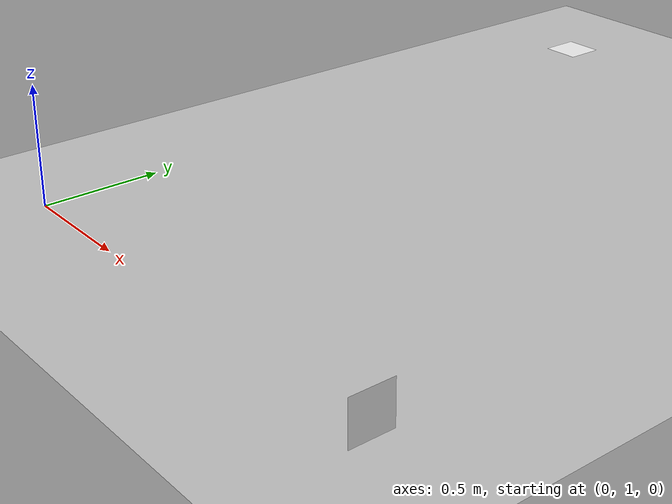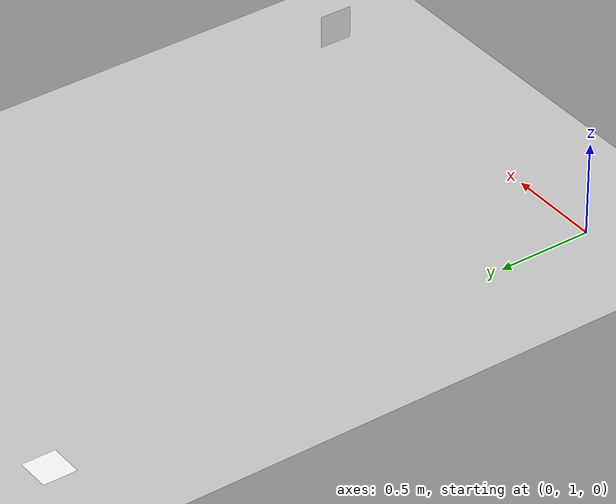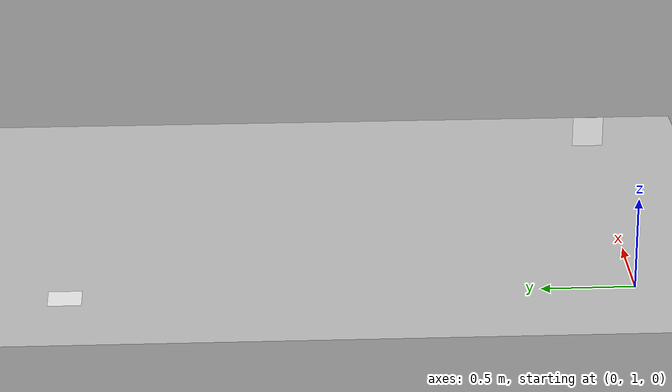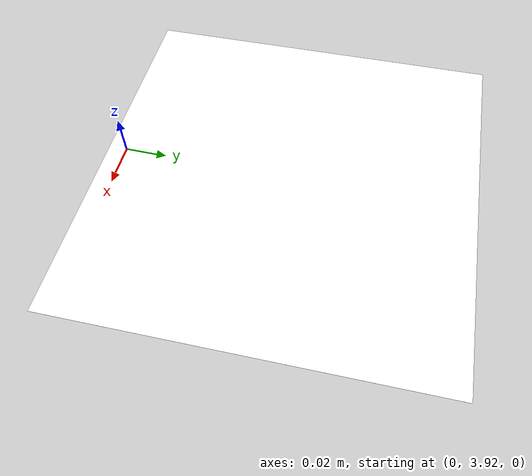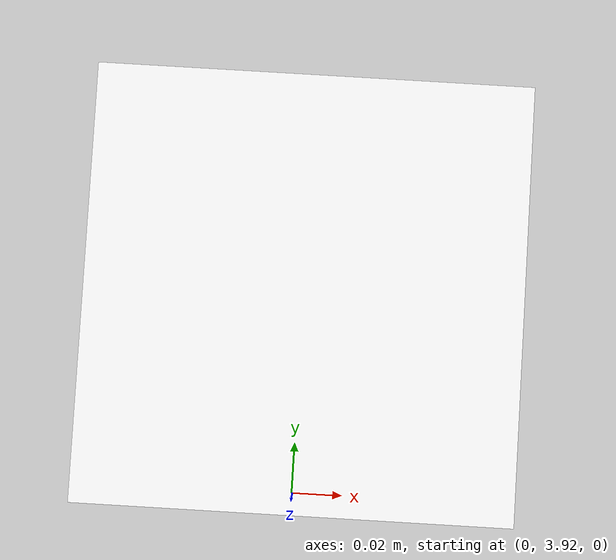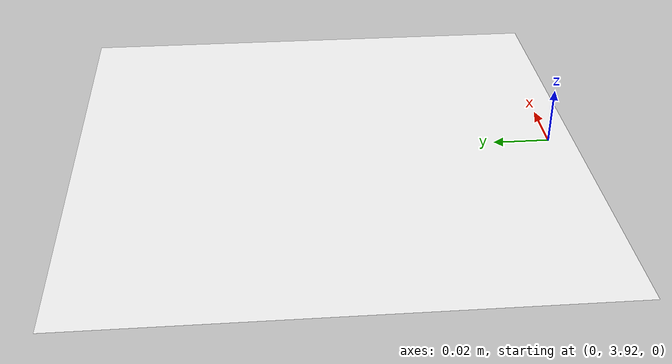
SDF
<sdf version="1.4">
  <world name="default">

    <scene>
      <ambient>0.4 0.4 0.4 1</ambient>
      <background>0.7 0.7 0.7 1</background>
      <shadows>true</shadows>
    </scene>

    <!-- A global light source -->
    <include>
      <uri>model://sun</uri>
    </include>

    <!-- A ground plane -->
    <include>
      <uri>model://ground_plane</uri>
    </include>

    <physics type="ode">
      <real_time_update_rate>1000.0</real_time_update_rate>
      <max_step_size>0.001</max_step_size>
      <real_time_factor>1</real_time_factor>
      <ode>
        <solver>
          <type>quick</type>
          <iters>150</iters>
          <precon_iters>0</precon_iters>
          <sor>1.400000</sor>
          <use_dynamic_moi_rescaling>1</use_dynamic_moi_rescaling>
        </solver>
        <constraints>
          <cfm>0.00001</cfm>
          <erp>0.2</erp>
          <contact_max_correcting_vel>2000.000000</contact_max_correcting_vel>
          <contact_surface_layer>0.01000</contact_surface_layer>
        </constraints>
      </ode>
    </physics>

 <!-- Load world -->

    <include>
      <uri>model://aruco_visual_marker_0</uri>
    </include>

     <include>
      <uri>model://aruco_visual_marker_1</uri>
    </include>

    <gui fullscreen='0'>
      <camera name='user_camera'>
        <pose>10 10 12.0 0 1.5708 0</pose>
        <view_controller>orbit</view_controller>
      </camera>
    </gui>

   </world>

</sdf>

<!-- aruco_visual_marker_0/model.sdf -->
<sdf version='1.5'>
  <model name='aruco_visual_marker_0'>

    <link name='marker'>
      <pose frame=''>0 2 0 0 0 0</pose>
      <visual name='visual'>
        <geometry>
          <box>
            <size>0.1778 0.1778 1e-5</size>
          </box>
        </geometry>
        <material>
          <script>
            <uri>model://aruco_visual_marker_0/materials/scripts</uri>
            <uri>model://aruco_visual_marker_0/materials/textures</uri>
            <name>ArucoVisualMarker0/Marker</name>
          </script>
          <ambient>1 1 1 1</ambient>
          <diffuse>1 1 1 1</diffuse>
          <specular>0 0 0 1</specular>
          <emissive>1 1 1 0</emissive>
          <shader type='vertex'>
            <normal_map>__default__</normal_map>
          </shader>
        </material>
        <pose frame=''>0 2 0 0 -0 0</pose>
        <cast_shadows>1</cast_shadows>
        <transparency>0</transparency>
      </visual>
      <collision name='collision'>
        <laser_retro>0</laser_retro>
        <max_contacts>10</max_contacts>
        <pose frame=''>0 2 0 0 -0 0</pose>
        <geometry>
          <box>
            <size>0.1778 0.1778 1e-05</size>
          </box>
        </geometry>
      </collision>
    </link>

    <link name='marker_pad'>
      <pose frame='marker'>0 2 0 0 -0 0</pose>
      <visual name='visual'>
        <geometry>
          <box>
            <size>0.1778 0.1778 1e-5</size>
          </box>
        </geometry>
        <material>
          <lighting>1</lighting>
          <script>
            <uri>file://media/materials/scripts/gazebo.material</uri>
            <name>Gazebo/White</name>
          </script>
          <ambient>0.3 0.3 0.3 1</ambient>
          <diffuse>0.7 0.7 0.7 1</diffuse>
          <specular>0.01 0.01 0.01 1</specular>
          <emissive>1 1 1 0</emissive>
          <shader type='vertex'>
            <normal_map>__default__</normal_map>
          </shader>
        </material>
        <cast_shadows>1</cast_shadows>
        <transparency>0</transparency>
      </visual>
      <collision name='collision'>
        <laser_retro>0</laser_retro>
        <max_contacts>10</max_contacts>
        <pose frame=''>0 2 0 0 -0 0</pose>
        <geometry>
          <box>
            <size>0.1778 0.1778 1e-5</size>
          </box>
        </geometry>
      </collision>
    </link>

    <joint name='marker_JOINT_marker_pad' type='revolute'>
      <parent>marker</parent>
      <child>marker_pad</child>
      <pose frame=''>0 2 0 0 -0 0</pose>
      <axis>
        <xyz>0 0 1</xyz>
        <limit>
          <upper>0</upper>
          <lower>0</lower>
        </limit>
      </axis>
    </joint>

    <static>1</static>
    <allow_auto_disable>1</allow_auto_disable>

  </model>
</sdf>

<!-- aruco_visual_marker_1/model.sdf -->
<sdf version='1.5'>
  <model name='aruco_visual_marker_1'>

    <link name='marker'>
      <pose frame=''>2 1 0.0889 0 -1.5708 0</pose>
      <visual name='visual'>
        <geometry>
          <box>
            <size>0.1778 0.1778 1e-5</size>
          </box>
        </geometry>
        <material>
          <script>
            <uri>model://aruco_visual_marker_1/materials/scripts</uri>
            <uri>model://aruco_visual_marker_1/materials/textures</uri>
            <name>ArucoVisualMarker1/Marker</name>
          </script>
          <ambient>1 1 1 1</ambient>
          <diffuse>1 1 1 1</diffuse>
          <specular>0 0 0 1</specular>
          <emissive>1 1 1 0</emissive>
          <shader type='vertex'>
            <normal_map>__default__</normal_map>
          </shader>
        </material>
        <pose frame=''>0 0 0 0 -0 0</pose>
        <cast_shadows>1</cast_shadows>
        <transparency>0</transparency>
      </visual>
      <collision name='collision'>
        <laser_retro>0</laser_retro>
        <max_contacts>10</max_contacts>
        <pose frame=''>0 0 0 0 -0 0</pose>
        <geometry>
          <box>
            <size>0.1778 0.1778 1e-05</size>
          </box>
        </geometry>
      </collision>
    </link>

    <link name='marker_pad'>
      <pose frame='marker'>0 0 -1e-5 0 -0 0</pose>
      <visual name='visual'>
        <geometry>
          <box>
            <size>0.1778 0.1778 1e-5</size>
          </box>
        </geometry>
        <material>
          <lighting>1</lighting>
          <script>
            <uri>file://media/materials/scripts/gazebo.material</uri>
            <name>Gazebo/White</name>
          </script>
          <ambient>0.3 0.3 0.3 1</ambient>
          <diffuse>0.7 0.7 0.7 1</diffuse>
          <specular>0.01 0.01 0.01 1</specular>
          <emissive>1 1 1 0</emissive>
          <shader type='vertex'>
            <normal_map>__default__</normal_map>
          </shader>
        </material>
        <cast_shadows>1</cast_shadows>
        <transparency>0</transparency>
      </visual>
      <collision name='collision'>
        <laser_retro>0</laser_retro>
        <max_contacts>10</max_contacts>
        <pose frame=''>0 0 0 0 -0 0</pose>
        <geometry>
          <box>
            <size>0.1778 0.1778 1e-5</size>
          </box>
        </geometry>
      </collision>
    </link>

    <joint name='marker_JOINT_marker_pad' type='revolute'>
      <parent>marker</parent>
      <child>marker_pad</child>
      <pose frame=''>0 0 0 0 -0 0</pose>
      <axis>
        <xyz>0 0 1</xyz>
        <limit>
          <upper>0</upper>
          <lower>0</lower>
        </limit>
      </axis>
    </joint>

    <static>1</static>
    <allow_auto_disable>1</allow_auto_disable>

  </model>
</sdf>
